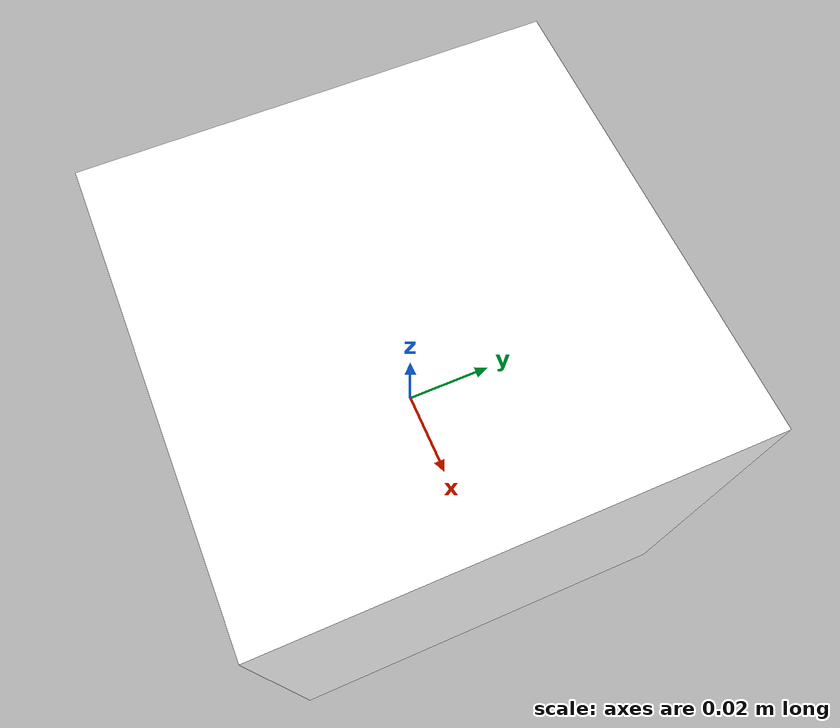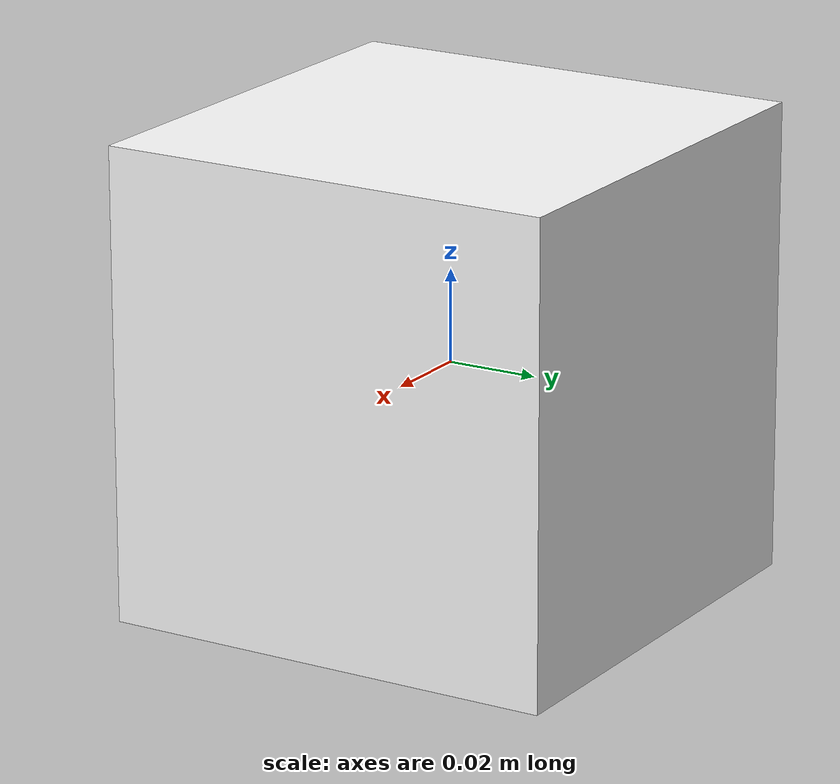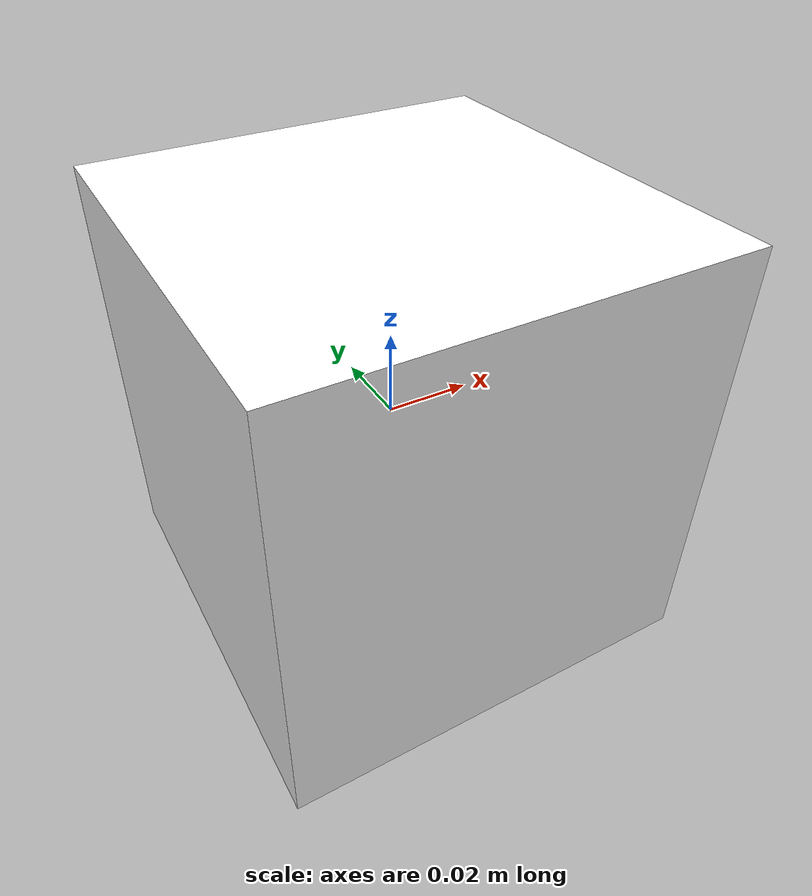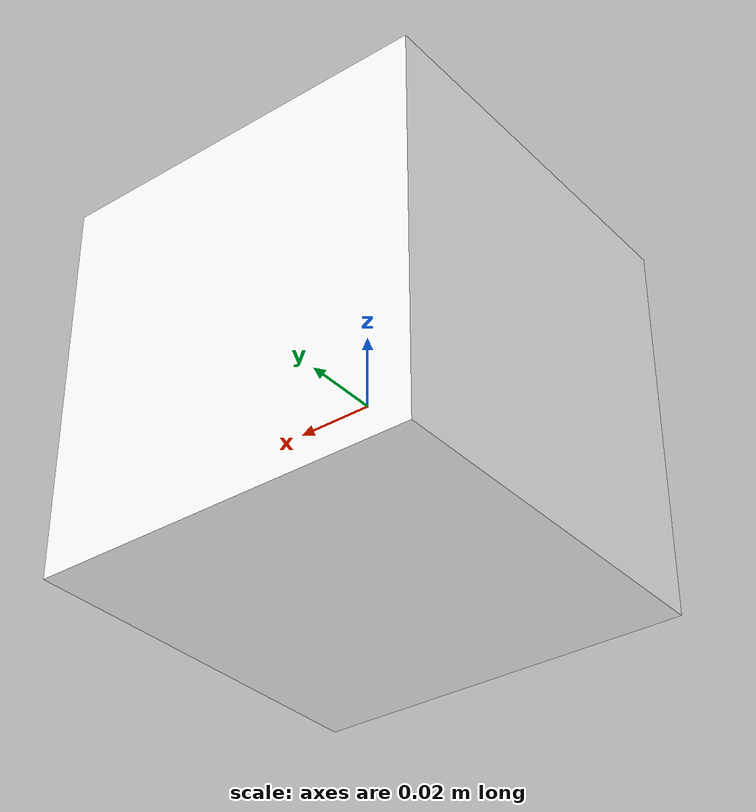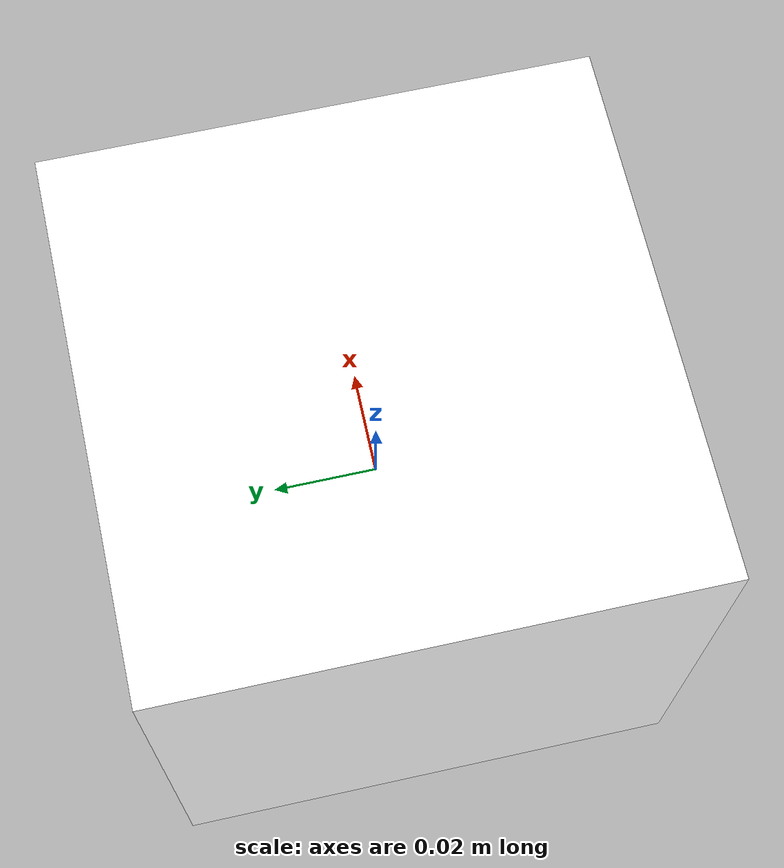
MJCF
<mujoco model="area">
    <compiler angle="radian" autolimits="true" />
    <option impratio="10" />
    <default>
        <default class="visual">
            <geom type="mesh" contype="0" conaffinity="0" group="2" />
        </default>
        <default class="collision">
            <geom type="mesh" group="3" />
        </default>
    </default>

    <asset>
        <material name="white" rgba="1 1 1 1" reflectance="0" specular="0" shininess="0" />
    </asset>
    <worldbody>
        <body name="area">
            <geom size="0.05 0.05 0.051" class="visual" type="box"
                material="white" />
            <geom size="0.05 0.05 0.051" class="collision" type="box" />
        </body>
    </worldbody>
</mujoco>
